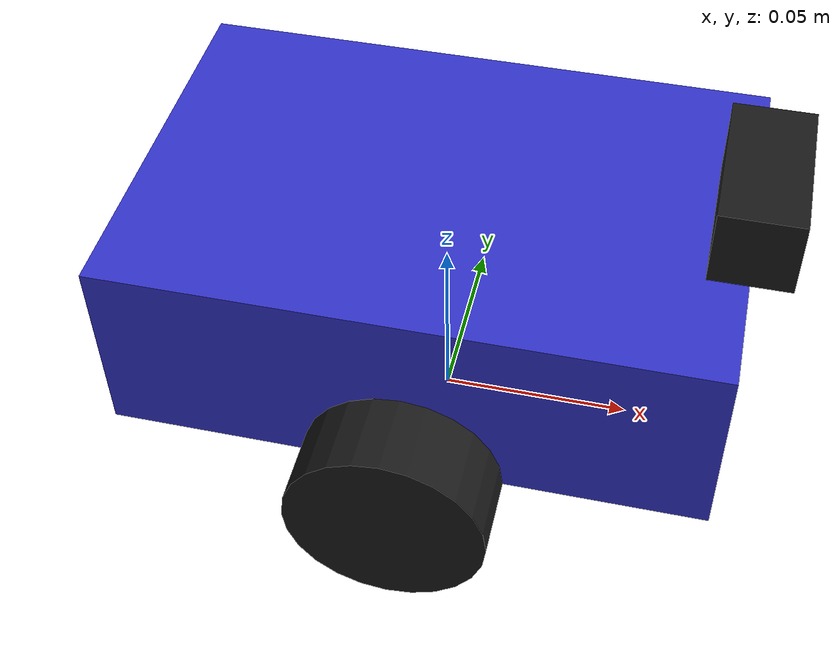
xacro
<?xml version="1.0"?>
<robot xmlns:xacro="http://www.ros.org/wiki/xacro" name="cyberbrick_robot">

  <!-- Properties -->
  <xacro:property name="chassis_length" value="0.15"/>
  <xacro:property name="chassis_width" value="0.10"/>
  <xacro:property name="chassis_height" value="0.05"/>
  <xacro:property name="wheel_radius" value="0.025"/>
  <xacro:property name="wheel_width" value="0.02"/>
  <xacro:property name="wheel_separation" value="0.12"/>

  <!-- Materials -->
  <material name="blue">
    <color rgba="0.2 0.2 0.8 1.0"/>
  </material>
  <material name="black">
    <color rgba="0.1 0.1 0.1 1.0"/>
  </material>
  <material name="white">
    <color rgba="0.9 0.9 0.9 1.0"/>
  </material>

  <!-- Base footprint (ground level) -->
  <link name="base_footprint"/>

  <!-- Base link (chassis) -->
  <link name="base_link">
    <visual>
      <geometry>
        <box size="${chassis_length} ${chassis_width} ${chassis_height}"/>
      </geometry>
      <material name="blue"/>
    </visual>
    <collision>
      <geometry>
        <box size="${chassis_length} ${chassis_width} ${chassis_height}"/>
      </geometry>
    </collision>
    <inertial>
      <mass value="0.5"/>
      <inertia ixx="0.001" ixy="0" ixz="0" iyy="0.001" iyz="0" izz="0.001"/>
    </inertial>
  </link>

  <joint name="base_joint" type="fixed">
    <parent link="base_footprint"/>
    <child link="base_link"/>
    <origin xyz="0 0 ${wheel_radius + chassis_height/2}" rpy="0 0 0"/>
  </joint>

  <!-- Left wheel -->
  <link name="left_wheel">
    <visual>
      <geometry>
        <cylinder radius="${wheel_radius}" length="${wheel_width}"/>
      </geometry>
      <material name="black"/>
    </visual>
    <collision>
      <geometry>
        <cylinder radius="${wheel_radius}" length="${wheel_width}"/>
      </geometry>
    </collision>
    <inertial>
      <mass value="0.1"/>
      <inertia ixx="0.0001" ixy="0" ixz="0" iyy="0.0001" iyz="0" izz="0.0001"/>
    </inertial>
  </link>

  <joint name="left_wheel_joint" type="continuous">
    <parent link="base_link"/>
    <child link="left_wheel"/>
    <origin xyz="0 ${wheel_separation/2} ${-chassis_height/2}" rpy="${-pi/2} 0 0"/>
    <axis xyz="0 0 1"/>
  </joint>

  <!-- Right wheel -->
  <link name="right_wheel">
    <visual>
      <geometry>
        <cylinder radius="${wheel_radius}" length="${wheel_width}"/>
      </geometry>
      <material name="black"/>
    </visual>
    <collision>
      <geometry>
        <cylinder radius="${wheel_radius}" length="${wheel_width}"/>
      </geometry>
    </collision>
    <inertial>
      <mass value="0.1"/>
      <inertia ixx="0.0001" ixy="0" ixz="0" iyy="0.0001" iyz="0" izz="0.0001"/>
    </inertial>
  </link>

  <joint name="right_wheel_joint" type="continuous">
    <parent link="base_link"/>
    <child link="right_wheel"/>
    <origin xyz="0 ${-wheel_separation/2} ${-chassis_height/2}" rpy="${-pi/2} 0 0"/>
    <axis xyz="0 0 1"/>
  </joint>

  <!-- Caster wheel (front) -->
  <link name="caster_wheel">
    <visual>
      <geometry>
        <sphere radius="${wheel_radius/2}"/>
      </geometry>
      <material name="white"/>
    </visual>
    <collision>
      <geometry>
        <sphere radius="${wheel_radius/2}"/>
      </geometry>
    </collision>
    <inertial>
      <mass value="0.05"/>
      <inertia ixx="0.00001" ixy="0" ixz="0" iyy="0.00001" iyz="0" izz="0.00001"/>
    </inertial>
  </link>

  <joint name="caster_joint" type="fixed">
    <parent link="base_link"/>
    <child link="caster_wheel"/>
    <origin xyz="${chassis_length/2 - 0.02} 0 ${-chassis_height/2 - wheel_radius/2}" rpy="0 0 0"/>
  </joint>

  <!-- Camera mount -->
  <link name="camera_link">
    <visual>
      <geometry>
        <box size="0.02 0.04 0.02"/>
      </geometry>
      <material name="black"/>
    </visual>
  </link>

  <joint name="camera_joint" type="fixed">
    <parent link="base_link"/>
    <child link="camera_link"/>
    <origin xyz="${chassis_length/2} 0 ${chassis_height/2 + 0.01}" rpy="0 0 0"/>
  </joint>

  <!-- Gazebo plugins -->
  <gazebo>
    <!-- Differential drive controller -->
    <plugin name="diff_drive" filename="libgazebo_ros_diff_drive.so">
      <ros>
        <namespace>/cyberbrick</namespace>
      </ros>
      <left_joint>left_wheel_joint</left_joint>
      <right_joint>right_wheel_joint</right_joint>
      <wheel_separation>${wheel_separation}</wheel_separation>
      <wheel_diameter>${wheel_radius*2}</wheel_diameter>
      <max_wheel_torque>1.0</max_wheel_torque>
      <max_wheel_acceleration>2.0</max_wheel_acceleration>
      <command_topic>cmd_vel</command_topic>
      <publish_odom>true</publish_odom>
      <publish_odom_tf>true</publish_odom_tf>
      <odometry_topic>odom</odometry_topic>
      <odometry_frame>odom</odometry_frame>
      <robot_base_frame>base_footprint</robot_base_frame>
    </plugin>
  </gazebo>

  <!-- Camera plugin -->
  <gazebo reference="camera_link">
    <sensor name="camera" type="camera">
      <always_on>true</always_on>
      <update_rate>30</update_rate>
      <camera>
        <horizontal_fov>1.047</horizontal_fov>
        <image>
          <width>640</width>
          <height>480</height>
          <format>R8G8B8</format>
        </image>
      </camera>
      <plugin name="camera_controller" filename="libgazebo_ros_camera.so">
        <ros>
          <namespace>/cyberbrick</namespace>
        </ros>
        <camera_name>camera</camera_name>
        <frame_name>camera_link</frame_name>
      </plugin>
    </sensor>
  </gazebo>

</robot>
